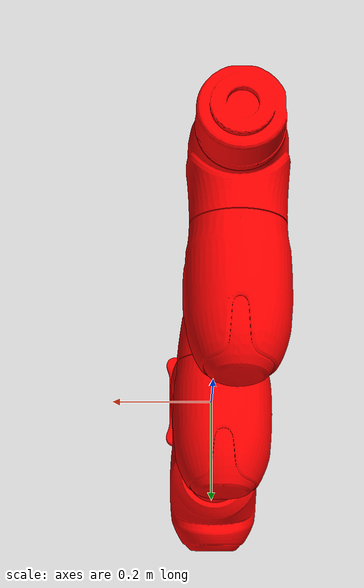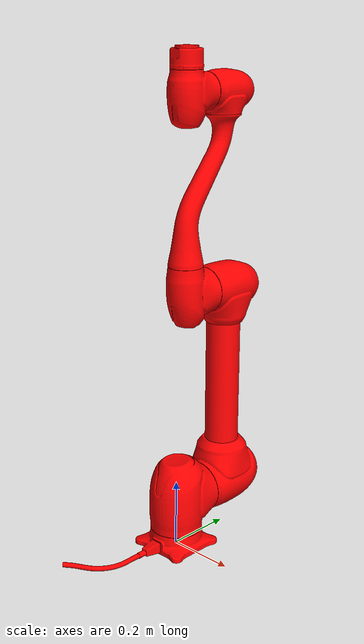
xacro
<?xml version="1.0"?>
<robot xmlns:xacro="http://www.ros.org/wiki/xacro" name="m1013">
    <xacro:arg name="initial_positions_file" default="initial_positions.yaml" />

    <link name="world"/>
    <joint name="world_fixed" type="fixed">
        <origin xyz="0 0 0" rpy="0 0 0"/>
        <parent link="world"/>
        <child link="base_link"/>
    </joint>

    <!-- Import m1013 urdf file -->
    <xacro:include filename="$(find dsr_description2)/urdf/m1013.urdf" />

    <!-- Import control_xacro -->
    <xacro:include filename="m1013.ros2_control.xacro" />

    <xacro:m1013_ros2_control name="FakeSystem" initial_positions_file="$(arg initial_positions_file)"/>

</robot>

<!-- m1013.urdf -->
<!-- |    This document was autogenerated by xacro from /dsr_description2/xacro/m1013.urdf.xacro | -->
<!-- |    EDITING THIS FILE BY HAND IS NOT RECOMMENDED                                 | -->
<robot name="m1013">
  <material name="black">
    <color rgba="0.0 0.0 0.0 1.0"/>
  </material>
  <material name="white">
    <color rgba="1.0 1.0 1.0 1.0"/>
  </material>
  <material name="orange">
    <color rgba="1.0 0.4 0.0 1.0"/>
  </material>
  <material name="dr_gray">
    <color rgba="0.490 0.490 0.486 1.0"/>
  </material>
  <material name="dr_white">
    <color rgba="0.941 0.941 0.941 1.0"/>
  </material>
  <material name="dr_blue">
    <color rgba="0 0 0.15 1"/>
  </material>
  <link name="base_link">
    <inertial>
      <mass value="4.12"/>
      <origin xyz="-3.4e-05   -0.004815    0.048482"/>
      <inertia ixx="0.016331" ixy="-6.4837e-06" ixz="2.0048e-06" iyy="0.014945" iyz="-0.00051686" izz="0.022577"/>
    </inertial>
    <collision>
      <origin rpy="0 0 0" xyz="0 0 0"/>
      <geometry>
        <mesh filename="package://dsr_description2/meshes/m1013_collision/MF1013_0_0.dae" scale="0.001 0.001 0.001"/>
      </geometry>
    </collision>
    <visual>
      <origin rpy="0 0 0" xyz="0 0 0"/>
      <geometry>
        <mesh filename="package://dsr_description2/meshes/m1013_white/MF1013_0_0.dae" scale="0.001 0.001 0.001"/>
      </geometry>
    </visual>
  </link>
  <!-- joint 1 -->
  <joint name="joint_1" type="revolute">
    <parent link="base_link"/>
    <child link="link_1"/>
    <origin rpy="0 0 0" xyz="0 0 0.1525"/>
    <axis xyz="0 0 1"/>
    <limit effort="346" lower="-6.2832" upper="6.2832" velocity="2.0944"/>
    <dynamics friction="0"/>
  </joint>
  <link name="link_1">
    <inertial>
      <mass value="7.8"/>
      <origin xyz="0.000119      0.0428   -0.006383"/>
      <inertia ixx="0.04506" ixy="4.1126e-05" ixz="-5.2533e-05" iyy="0.029679" iyz="-0.0019959" izz="0.047056"/>
    </inertial>
    <collision>
      <origin rpy="0 0 0" xyz="0 0 0"/>
      <geometry>
        <mesh filename="package://dsr_description2/meshes/m1013_collision/MF1013_1_0.dae" scale="0.001 0.001 0.001"/>
      </geometry>
    </collision>
    <visual>
      <origin rpy="0 0 0" xyz="0 0 0"/>
      <geometry>
        <mesh filename="package://dsr_description2/meshes/m1013_white/MF1013_1_0.dae" scale="0.001 0.001 0.001"/>
      </geometry>
    </visual>
  </link>
  <!-- joint2 -->
  <joint name="joint_2" type="revolute">
    <parent link="link_1"/>
    <child link="link_2"/>
    <origin rpy="0 -1.571 -1.571" xyz="0 0.0345 0"/>
    <axis xyz="0 0 1"/>
    <limit effort="346" lower="-6.2832" upper="6.2832" velocity="2.0944"/>
    <dynamics friction="0"/>
  </joint>
  <link name="link_2">
    <inertial>
      <mass value="10.83"/>
      <origin xyz="0.25973    -5.3e-05     0.15782"/>
      <inertia ixx="0.037586" ixy="-0.00036999" ixz="-0.0069927" iyy="0.84943" iyz="4.0201e-05" izz="0.85021"/>
    </inertial>
    <collision>
      <origin rpy="0 0 0" xyz="0 0 0"/>
      <geometry>
        <mesh filename="package://dsr_description2/meshes/m1013_collision/MF1013_2_0.dae" scale="0.001 0.001 0.001"/>
      </geometry>
    </collision>
    <visual>
      <origin rpy="0 0 0" xyz="0 0 0"/>
      <geometry>
        <mesh filename="package://dsr_description2/meshes/m1013_white/MF1013_2_0.dae" scale="0.001 0.001 0.001"/>
      </geometry>
    </visual>
    <collision>
      <origin rpy="0 0 0" xyz="0 0 0"/>
      <geometry>
        <mesh filename="package://dsr_description2/meshes/m1013_collision/MF1013_2_1.dae" scale="0.001 0.001 0.001"/>
      </geometry>
    </collision>
    <visual>
      <origin rpy="0 0 0" xyz="0 0 0"/>
      <geometry>
        <mesh filename="package://dsr_description2/meshes/m1013_white/MF1013_2_1.dae" scale="0.001 0.001 0.001"/>
      </geometry>
    </visual>
    <collision>
      <origin rpy="0 0 0" xyz="0 0 0"/>
      <geometry>
        <mesh filename="package://dsr_description2/meshes/m1013_collision/MF1013_2_2.dae" scale="0.001 0.001 0.001"/>
      </geometry>
    </collision>
    <visual>
      <origin rpy="0 0 0" xyz="0 0 0"/>
      <geometry>
        <mesh filename="package://dsr_description2/meshes/m1013_white/MF1013_2_2.dae" scale="0.001 0.001 0.001"/>
      </geometry>
    </visual>
  </link>
  <!-- joint3 -->
  <joint name="joint_3" type="revolute">
    <parent link="link_2"/>
    <child link="link_3"/>
    <origin rpy="0 0 1.571" xyz="0.62 0 0"/>
    <axis xyz="0 0 1"/>
    <limit effort="163" lower="-2.7925" upper="2.7925" velocity="3.1416"/>
    <dynamics friction="0"/>
  </joint>
  <link name="link_3">
    <inertial>
      <mass value="3.68"/>
      <origin xyz="-1.5e-05   -0.006702    0.044608"/>
      <inertia ixx="0.018748" ixy="7.8071e-06" ixz="-5.0324e-06" iyy="0.018972" iyz="-0.00099342" izz="0.011502"/>
    </inertial>
    <collision>
      <origin rpy="0 0 0" xyz="0 0 0"/>
      <geometry>
        <mesh filename="package://dsr_description2/meshes/m1013_collision/MF1013_3_0.dae" scale="0.001 0.001 0.001"/>
      </geometry>
    </collision>
    <visual>
      <origin rpy="0 0 0" xyz="0 0 0"/>
      <geometry>
        <mesh filename="package://dsr_description2/meshes/m1013_white/MF1013_3_0.dae" scale="0.001 0.001 0.001"/>
      </geometry>
    </visual>
  </link>
  <!-- joint4 -->
  <joint name="joint_4" type="revolute">
    <parent link="link_3"/>
    <child link="link_4"/>
    <origin rpy="1.571 0 0" xyz="0 -0.559 0"/>
    <axis xyz="0 0 1"/>
    <limit effort="50" lower="-6.2832" upper="6.2832" velocity="3.927"/>
    <dynamics friction="0"/>
  </joint>
  <link name="link_4">
    <inertial>
      <mass value="3.82"/>
      <origin xyz="7.1e-05    0.091879    -0.18252"/>
      <inertia ixx="0.19063" ixy="-1.8037e-05" ixz="-3.8576e-05" iyy="0.17268" iyz="-0.052996" izz="0.030386"/>
    </inertial>
    <collision>
      <origin rpy="0 0 0" xyz="0 0 0"/>
      <geometry>
        <mesh filename="package://dsr_description2/meshes/m1013_collision/MF1013_4_0.dae" scale="0.001 0.001 0.001"/>
      </geometry>
    </collision>
    <visual>
      <origin rpy="0 0 0" xyz="0 0 0"/>
      <geometry>
        <mesh filename="package://dsr_description2/meshes/m1013_white/MF1013_4_0.dae" scale="0.001 0.001 0.001"/>
      </geometry>
    </visual>
    <collision>
      <origin rpy="0 0 0" xyz="0 0 0"/>
      <geometry>
        <mesh filename="package://dsr_description2/meshes/m1013_collision/MF1013_4_1.dae" scale="0.001 0.001 0.001"/>
      </geometry>
    </collision>
    <visual>
      <origin rpy="0 0 0" xyz="0 0 0"/>
      <geometry>
        <mesh filename="package://dsr_description2/meshes/m1013_white/MF1013_4_1.dae" scale="0.001 0.001 0.001"/>
      </geometry>
    </visual>
  </link>
  <!-- joint5 -->
  <joint name="joint_5" type="revolute">
    <parent link="link_4"/>
    <child link="link_5"/>
    <origin rpy="-1.571 0 0" xyz="0 0 0"/>
    <axis xyz="0 0 1"/>
    <limit effort="50" lower="-6.2832" upper="6.2832" velocity="3.927"/>
    <dynamics friction="0"/>
  </joint>
  <link name="link_5">
    <inertial>
      <mass value="2.82"/>
      <origin xyz="-0.000273    0.003651    0.032088"/>
      <inertia ixx="0.015583" ixy="2.135e-05" ixz="-5.1895e-06" iyy="0.011519" iyz="0.00042553" izz="0.0088671"/>
    </inertial>
    <collision>
      <origin rpy="0 0 0" xyz="0 0 0"/>
      <geometry>
        <mesh filename="package://dsr_description2/meshes/m1013_collision/MF1013_5_0.dae" scale="0.001 0.001 0.001"/>
      </geometry>
    </collision>
    <visual>
      <origin rpy="0 0 0" xyz="0 0 0"/>
      <geometry>
        <mesh filename="package://dsr_description2/meshes/m1013_white/MF1013_5_0.dae" scale="0.001 0.001 0.001"/>
      </geometry>
    </visual>
  </link>
  <!-- joint6 -->
  <joint name="joint_6" type="revolute">
    <parent link="link_5"/>
    <child link="link_6"/>
    <origin rpy="1.571 0 0" xyz="0 -0.121 0"/>
    <axis xyz="0 0 1"/>
    <limit effort="50" lower="-6.2832" upper="6.2832" velocity="3.927"/>
    <dynamics friction="0"/>
  </joint>
  <link name="link_6">
    <inertial>
      <mass value="1.16"/>
      <origin xyz="-0.000292       7e-06     -0.0539"/>
      <inertia ixx="0.0048282" ixy="4.1298e-06" ixz="6.9879e-06" iyy="0.0059519" iyz="4.252e-06" izz="0.0061263"/>
    </inertial>
    <collision>
      <origin rpy="0 0 0" xyz="0 0 0"/>
      <geometry>
        <mesh filename="package://dsr_description2/meshes/m1013_collision/MF1013_6_0.dae" scale="0.001 0.001 0.001"/>
      </geometry>
    </collision>
    <visual>
      <origin rpy="0 0 0" xyz="0 0 0"/>
      <geometry>
        <mesh filename="package://dsr_description2/meshes/m1013_white/MF1013_6_0.dae" scale="0.001 0.001 0.001"/>
      </geometry>
    </visual>
  </link>
</robot>
